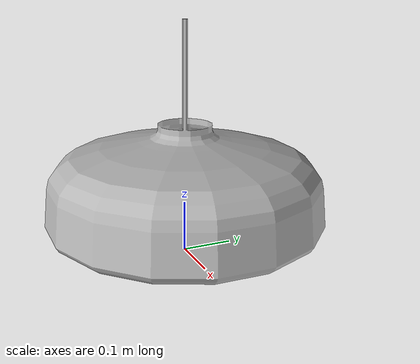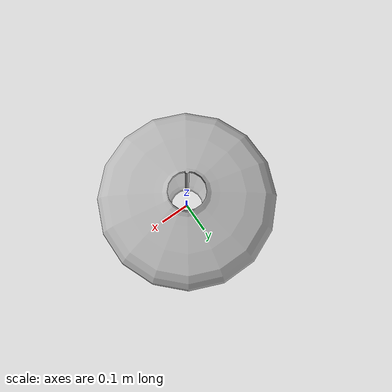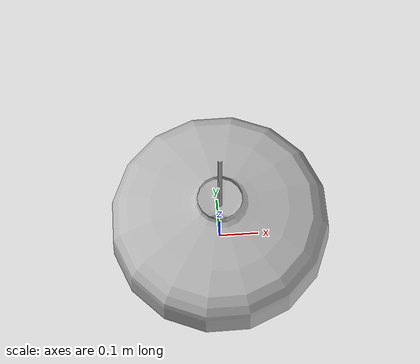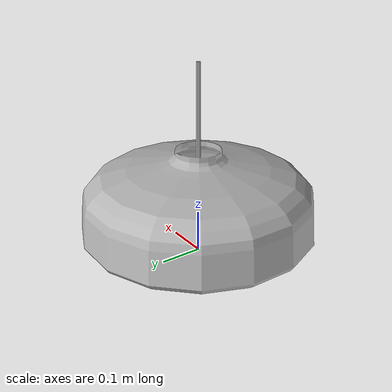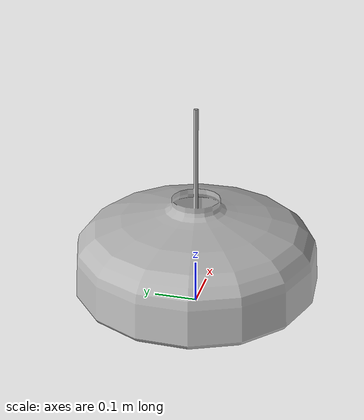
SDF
<?xml version='1.0'?>
<sdf version='1.4'>
  <model name='s__451'>
    <pose>0 0 0 0 0 0</pose>
    <static>true</static>
    <link name='link'>
      <collision name='collision'>
        <pose>0 0 0 0 0 0</pose>
        <geometry>
          <box>
            <size>0.54 0.54 2</size>
          </box>
        </geometry>
      </collision>
      <visual name='visual'>
        <pose>0 0 0 0 0 0</pose>
        <geometry>
          <mesh><uri>model://s__451/s__451.dae</uri></mesh>
        </geometry>
      </visual>
    </link>
  </model>
</sdf>
